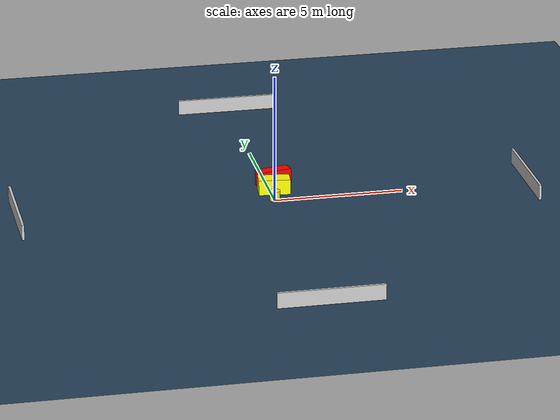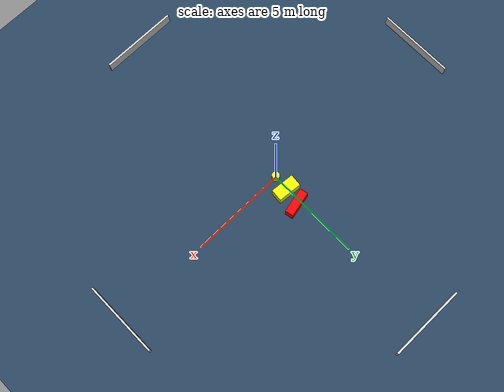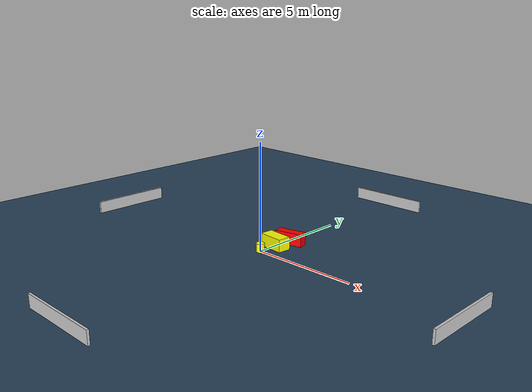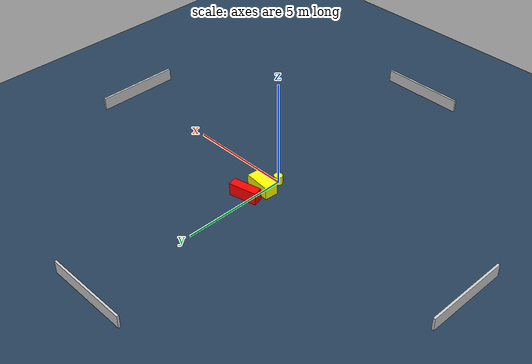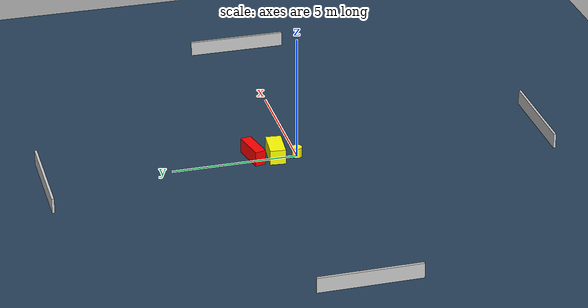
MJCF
<?xml version="1.0" ?>
<mujoco model="generated_environment">
  <option timestep="0.01" integrator="RK4" cone="elliptic"/>
  <default>
    <geom density="1"/>
  </default>
  <asset>
    <texture builtin="gradient" height="3072" name="skybox" rgb1="0.3 0.5 0.7" rgb2="0 0 0" type="skybox" width="512"/>
    <texture builtin="checker" height="300" name="groundplane" rgb1="0.2 0.3 0.4" rgb2="0.1 0.2 0.3" type="2d" width="300"/>
    <material name="groundplane" reflectance="0.2" texrepeat="5 5" texture="groundplane"/>
  </asset>
  <worldbody>
    <light dir="0 0 -1" directional="true" pos="0 0 1.5"/>
    <geom condim="3" friction="0.5 0.005 0.001" material="groundplane" name="floor" pos="0 0 0" size="0 0 0.05" type="plane"/>
    <body name="walls">
      <geom name="wall_1" condim="4" pos="-10.0 0.0 0.3" rgba="0.800000011920929 0.800000011920929 0.800000011920929 1.0" size="0.05 2.0 0.3" type="box"/>
      <geom name="wall_2" condim="4" pos="10.0 0.0 0.3" rgba="0.800000011920929 0.800000011920929 0.800000011920929 1.0" size="0.05 2.0 0.3" type="box"/>
      <geom name="wall_3" condim="4" pos="0.0 -10.0 0.3" rgba="0.800000011920929 0.800000011920929 0.800000011920929 1.0" size="2.0 0.05 0.3" type="box"/>
      <geom name="wall_4" condim="4" pos="0.0 10.0 0.3" rgba="0.800000011920929 0.800000011920929 0.800000011920929 1.0" size="2.0 0.05 0.3" type="box"/>
    </body>
    <body name="robot">
      <joint name="joint_x" type="slide" pos="0 0 0" axis="1 0 0"/>
      <joint name="joint_y" type="slide" pos="0 0 0" axis="0 1 0"/>
      <geom name="robot" type="cylinder" pos="0.0 0.0 0.2" size="0.2 0.2 0.0" mass="5.0" friction="1.0 0.005 0.0001" condim="4" rgba="1.0 1.0 0.0 1.0"/>
    </body>
    <body name="obstacle_1_movable">
      <geom name="obstacle_1_movable" condim="4" pos="0.1266465410525521 0.8416880346576118 0.3" euler="0 0 354.8133041661762" friction="0.0 0.005 0.001" rgba="1.0 1.0 0.0 1.0" size="0.6169018066547769 0.31234579172662014 0.3" type="box" mass="0.1"/>
      <joint type="free"/>
    </body>
    <body name="obstacle_2_static">
      <geom name="obstacle_2_static" condim="4" pos="0.2756637145053483 1.710147506982668 0.3" euler="0 0 282.5085914579691" friction="0.0 0.005 0.001" rgba="1.0 0.0 0.0 1.0" size="0.21771945423431308 0.6660511188101882 0.3" type="box"/>
    </body>
  </worldbody>
  <actuator>
    <motor name="actuator_x" joint="joint_x" gear="1" ctrlrange="-1 1"/>
    <motor name="actuator_y" joint="joint_y" gear="1" ctrlrange="-1 1"/>
  </actuator>
</mujoco>
